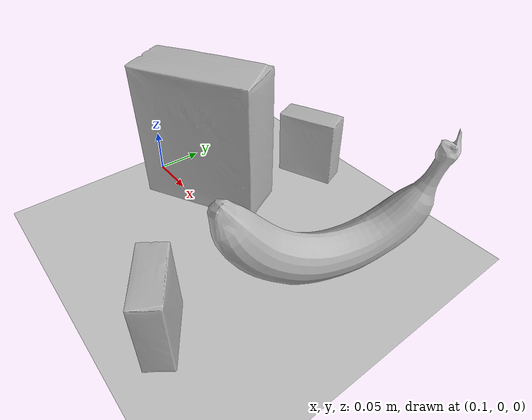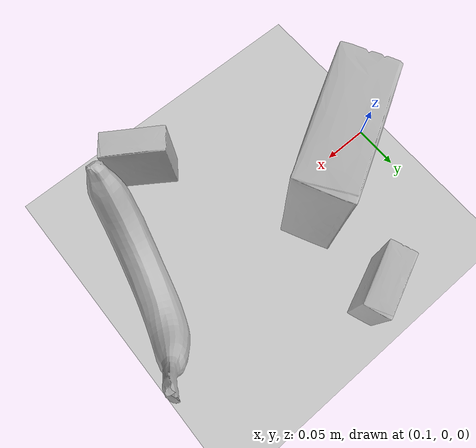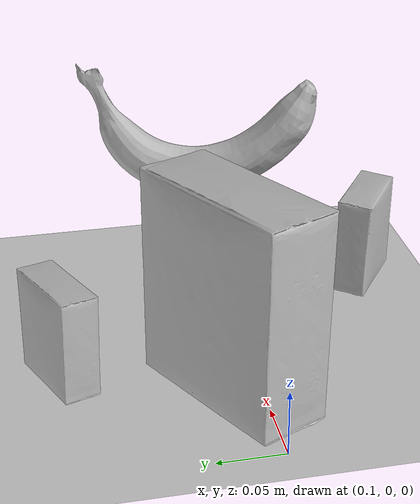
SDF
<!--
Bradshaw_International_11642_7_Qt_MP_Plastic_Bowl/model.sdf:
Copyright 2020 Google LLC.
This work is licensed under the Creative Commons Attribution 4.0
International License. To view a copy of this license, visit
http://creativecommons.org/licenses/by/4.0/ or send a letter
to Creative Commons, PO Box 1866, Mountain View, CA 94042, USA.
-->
<sdf version="1.8">
 <world name="robot_arm_world">
  <gravity>0 0 -9.8</gravity>
  <physics default="0" name="default_physics" type="ode">
   <max_step_size>0.01</max_step_size>
   <real_time_factor>1</real_time_factor>
   <real_time_update_rate>100</real_time_update_rate>
  </physics>
  <plugin filename="gz-sim-physics-system" name="gz::sim::systems::Physics"/>
  <plugin filename="gz-sim-user-commands-system" name="gz::sim::systems::UserCommands"/>
  <plugin filename="gz-sim-scene-broadcaster-system" name="gz::sim::systems::SceneBroadcaster"/>
  <light name="sun" type="directional">
   <pose>0 0 10 0 0 0</pose>
   <diffuse>0.8 0.8 0.8 1</diffuse>
   <specular>0.2 0.2 0.2 1</specular>
   <attenuation>
    <range>1000</range>
    <constant>0.9</constant>
    <linear>0.01</linear>
    <quadratic>0.001</quadratic>
   </attenuation>
   <direction>-0.5 0.1 -0.9</direction>
  </light>
  <model name="ground_plane">
   <static>true</static>
   <link name="link">
    <collision name="collision">
     <geometry><plane><normal>0 0 1</normal><size>100 100</size></plane></geometry>
    </collision>
    <visual name="visual">
     <geometry><plane><normal>0 0 1</normal><size>100 100</size></plane></geometry>
     <material>
      <ambient>0.8 0.8 0.8 1</ambient>
      <diffuse>0.8 0.8 0.8 1</diffuse>
      <specular>0.8 0.8 0.8 1</specular>
     </material>
    </visual>
   </link>
  </model>
  <include>
   <uri>model://Bradshaw_International_11642_7_Qt_MP_Plastic_Bowl</uri>
   <name>bradshaw_bowl</name>
   <pose>0.22 0.14 0.0 0 0 0.4</pose>
  </include>
  <include>
   <uri>model://Nestle_Candy_19_oz_Butterfinger_Singles_116567</uri>
   <name>butterfinger</name>
   <pose>0.18 0.02 0.0 0 0 0.5</pose>
  </include>
  <include>
   <uri>model://Threshold_Porcelain_Spoon_Rest_White</uri>
   <name>spoon_rest</name>
   <pose>0.32 -0.12 0.0 0 0 -0.6</pose>
  </include>
  <include><uri>model://Banana for Scale</uri><name>banana</name><pose>0.39 0.01 0.0 0 0 1.3</pose></include>
 </world>
</sdf>

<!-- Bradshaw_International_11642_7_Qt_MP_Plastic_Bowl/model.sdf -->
<sdf version="1.6">
  <model name="Bradshaw_International_11642_7_Qt_MP_Plastic_Bowl">
    <link name="link_0">
      <visual name="visual">
        <geometry>
          <mesh>
            <uri>meshes/model.obj</uri>
            <scale>0.5 0.5 0.5</scale>
          </mesh>
        </geometry>
      </visual>
      <collision name="collision_0">
        <geometry>
          <mesh>
            <uri>meshes/model.obj</uri>
            <scale>0.5 0.5 0.5</scale>
          </mesh>
        </geometry>
      </collision>
    </link>
  </model>
</sdf>

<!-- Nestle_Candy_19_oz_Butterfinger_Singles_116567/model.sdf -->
<sdf version="1.6">
  <model name="Nestle_Candy_19_oz_Butterfinger_Singles_116567">
    <link name="link_0">
      <visual name="visual">
        <geometry>
          <mesh>
            <uri>meshes/model.obj</uri>
          </mesh>
        </geometry>
      </visual>
      <collision name="collision_0">
        <geometry>
          <mesh>
            <uri>meshes/model.obj</uri>
          </mesh>
        </geometry>
      </collision>
    </link>
  </model>
</sdf>

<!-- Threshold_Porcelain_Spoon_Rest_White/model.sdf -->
<sdf version="1.6">
  <model name="Threshold_Porcelain_Spoon_Rest_White">
    <link name="link_0">
      <visual name="visual">
        <geometry>
          <mesh>
            <uri>meshes/model.obj</uri>
            <scale>0.5 0.5 0.5</scale>
          </mesh>
        </geometry>
      </visual>
      <collision name="collision_0">
        <geometry>
          <mesh>
            <uri>meshes/model.obj</uri>
            <scale>0.5 0.5 0.5</scale>
          </mesh>
        </geometry>
      </collision>
    </link>
  </model>
</sdf>

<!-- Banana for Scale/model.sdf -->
<sdf version="1.6">
    <model name="Banana for Scale">
        <link name="link">
            <collision name="collision">
                <pose>0 0 0.12 0 1.5708 0</pose>
                <geometry>
                    <mesh>
                        <uri>meshes/Banana.dae</uri>
                    </mesh>
                </geometry>
            </collision>
            <visual name="visual">
                <pose>0 0 0.12 0 1.5708 0</pose>
                <geometry>
                    <mesh>
                        <uri>meshes/Banana.dae</uri>
                    </mesh>
                </geometry>
            </visual>
        </link>
    </model>
</sdf>
